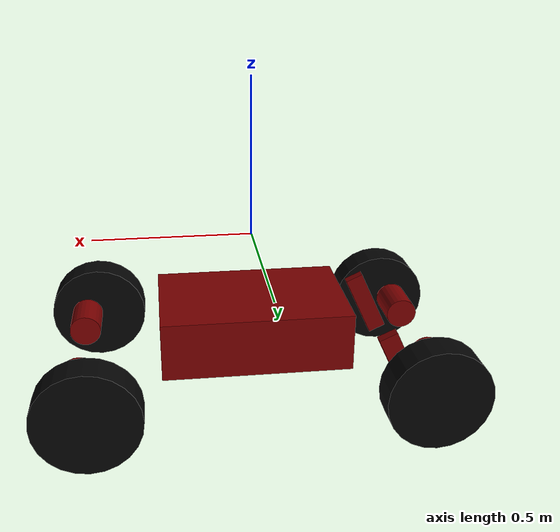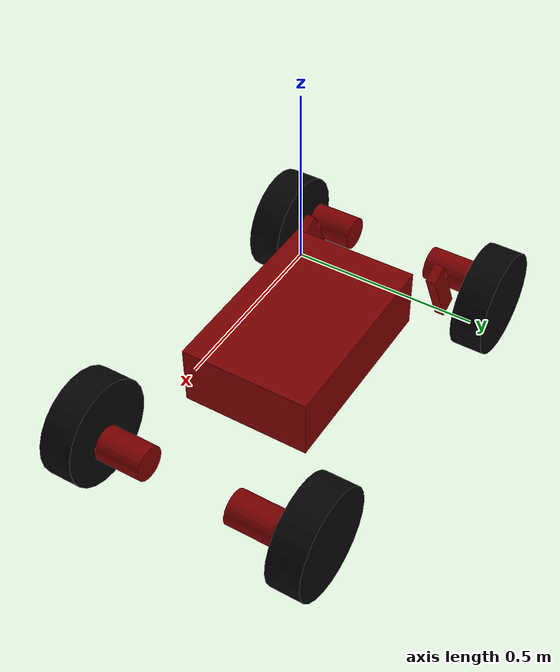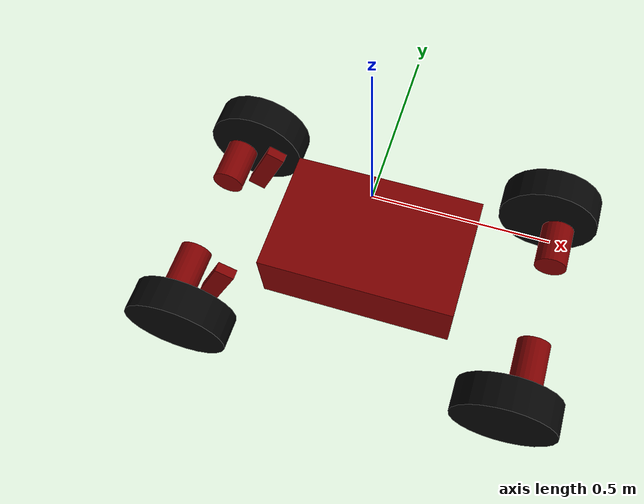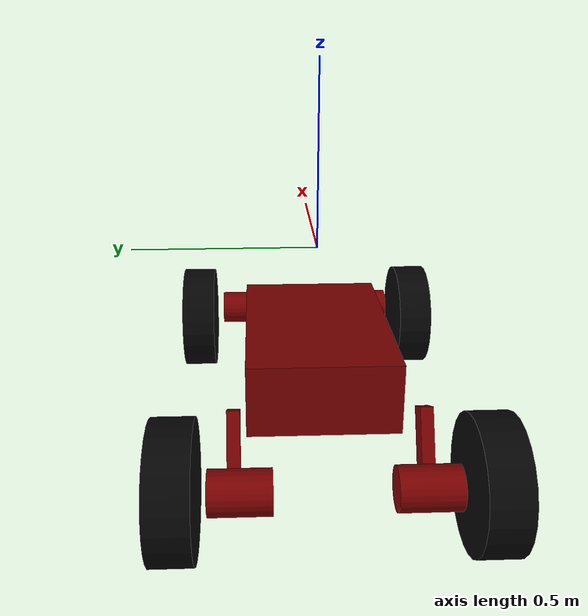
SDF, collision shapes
<?xml version="1.0" ?>
<sdf version='1.9'>
  <model name='gpr_robot' canonical_link='base_link'>
    <static>false</static>

    <!-- Chassis -->
    <link name='base_link'>
      <pose relative_to='__model__'>0 0 0 0 0 0</pose>
      <gravity>true</gravity>
      <self_collide>false</self_collide>
      <enable_wind>false</enable_wind>
      <kinematic>false</kinematic>
      <inertial>
        <mass>46.064</mass>
        <inertia>
          <ixx>0.615397</ixx>
          <ixy>-0.0240585</ixy>
          <ixz>-0.120749</ixz>
          <iyy>1.75388</iyy>
          <iyz>-0.0028322</iyz>
          <izz>2.03641</izz>
        </inertia>
      </inertial>

      <!-- Motors -->
      <collision name='motor_rear_left_collision'>
        <pose>0.56092 0.20875 -0.38671 1.5708 0 0</pose>
        <geometry>
          <cylinder>
            <radius>0.0525</radius>
            <length>0.14465</length>
          </cylinder>
        </geometry>
      </collision>
      <visual name='motor_rear_left_visual'>
        <pose>0.56092 0.20875 -0.38671 1.5708 0 0</pose>
        <geometry>
          <cylinder>
            <radius>0.0525</radius>
            <length>0.14465</length>
          </cylinder>
        </geometry>
        <material>
          <ambient>0.5 0 0 1</ambient>
          <diffuse>0.5 0 0 1</diffuse>
          <specular>0.5 0 0 1</specular>
        </material>
      </visual>
      <collision name='motor_rear_right_collision'>
        <pose>0.56092 -0.20875 -0.38671 1.5708 0 0</pose>
        <geometry>
          <cylinder>
            <radius>0.0525</radius>
            <length>0.14465</length>
          </cylinder>
        </geometry>
      </collision>
      <visual name='motor_rear_right_visual'>
        <pose>0.56092 -0.20875 -0.38671 1.5708 0 0</pose>
        <geometry>
          <cylinder>
            <radius>0.0525</radius>
            <length>0.14465</length>
          </cylinder>
        </geometry>
        <material>
          <ambient>0.5 0 0 1</ambient>
          <diffuse>0.5 0 0 1</diffuse>
          <specular>0.5 0 0 1</specular>
        </material>
      </visual>
      <collision name='motor_back_left_collision'>
        <pose>-0.56092 0.20875 -0.38671 1.5708 0 0</pose>
        <geometry>
          <cylinder>
            <radius>0.0525</radius>
            <length>0.14465</length>
          </cylinder>
        </geometry>
      </collision>
      <visual name='motor_back_left_visual'>
        <pose>-0.56092 0.20875 -0.38671 1.5708 0 0</pose>
        <geometry>
          <cylinder>
            <radius>0.0525</radius>
            <length>0.14465</length>
          </cylinder>
        </geometry>
        <material>
          <ambient>0.5 0 0 1</ambient>
          <diffuse>0.5 0 0 1</diffuse>
          <specular>0.5 0 0 1</specular>
        </material>
      </visual>
      <collision name='motor_back_right_collision'>
        <pose>-0.56092 -0.20875 -0.38671 1.5708 0 0</pose>
        <geometry>
          <cylinder>
            <radius>0.0525</radius>
            <length>0.14465</length>
          </cylinder>
        </geometry>
      </collision>
      <visual name='motor_back_right_visual'>
        <pose>-0.56092 -0.20875 -0.38671 1.5708 0 0</pose>
        <geometry>
          <cylinder>
            <radius>0.0525</radius>
            <length>0.14465</length>
          </cylinder>
        </geometry>
        <material>
          <ambient>0.5 0 0 1</ambient>
          <diffuse>0.5 0 0 1</diffuse>
          <specular>0.5 0 0 1</specular>
        </material>
      </visual>

      <!-- Frame -->
      <collision name='frame_rear_left_collision'>
        <pose>-0.44757 0.22456 -0.37413 0 -1.13446 0</pose>
        <geometry>
          <box>
            <size>0.22860 0.031 0.062</size>
          </box>
        </geometry>
      </collision>
      <visual name='frame_rear_left_visual'>
        <pose>-0.44757 0.22456 -0.37413 0 -1.13446 0</pose>
        <geometry>
          <box>
            <size>0.22860 0.031 0.062</size>
          </box>
        </geometry>
        <material>
          <ambient>0.5 0 0 1</ambient>
          <diffuse>0.5 0 0 1</diffuse>
          <specular>0.5 0 0 1</specular>
        </material>
      </visual>
      <collision name='frame_rear_right_collision'>
        <pose>-0.44757 -0.22456 -0.37413 0 -1.13446 0</pose>
        <geometry>
          <box>
            <size>0.22860 0.031 0.062</size>
          </box>
        </geometry>
      </collision>
      <visual name='frame_rear_right_visual'>
        <pose>-0.44757 -0.22456 -0.37413 0 -1.13446 0</pose>
        <geometry>
          <box>
            <size>0.22860 0.031 0.062</size>
          </box>
        </geometry>
        <material>
          <ambient>0.5 0 0 1</ambient>
          <diffuse>0.5 0 0 1</diffuse>
          <specular>0.5 0 0 1</specular>
        </material>
      </visual>

      <!-- GPR -->
      <collision name='gpr_collision'>
        <pose>0 0 -0.30602 0 0 0</pose>
        <geometry>
          <box>
            <size>0.60600 0.39400 0.18830</size>
          </box>
        </geometry>
      </collision>
      <visual name='gpr__visual'>
        <pose>0 0 -0.30602 0 0 0</pose>
        <geometry>
          <box>
            <size>0.60600 0.39400 0.18830</size>
          </box>
        </geometry>
        <material>
          <ambient>0.5 0 0 1</ambient>
          <diffuse>0.5 0 0 1</diffuse>
          <specular>0.5 0 0 1</specular>
        </material>
      </visual>

      <!-- PV -->

      <!-- GPS -->
      <visual name='gps_visual'>
        <pose>-0.58619 0.19456 0.66055 0 0 0</pose>
        <geometry>
          <cylinder>
            <radius>0.088</radius>
            <length>0.07</length>
          </cylinder>
        </geometry>
        <material>
          <ambient> 0.5 0.0 0.5 1</ambient>
          <diffuse> 0.5 0.0 0.5 1</diffuse>
          <specular>0.5 0.0 0.5 1</specular>
        </material>
      </visual>
      <visual name='gps_pole_visual'>
        <pose>-0.58619 0.19456 0.16102 0 0 0</pose>
        <geometry>
          <cylinder>
            <radius>0.016</radius>
            <length>0.9214</length>
          </cylinder>
        </geometry>
        <material>
          <ambient> 0.5 0.0 0.5 1</ambient>
          <diffuse> 0.5 0.0 0.5 1</diffuse>
          <specular>0.5 0.0 0.5 1</specular>
        </material>
      </visual>

      <!-- Chassis mesh -->
      <visual name='base_link_visual'>
        <pose>0 0 0 1.5708 0 1.5708</pose>
        <geometry>
          <mesh>
            <scale>1 1 1</scale>
            <uri>package://gpr_robot_description/models/gpr_robot/meshes/chassis.stl</uri>
          </mesh>
        </geometry>
        <material>
          <ambient> 0.25 0.25 0.25 1</ambient>
          <diffuse> 0.25 0.25 0.25 1</diffuse>
          <specular>0.25 0.25 0.25 1</specular>
        </material>
      </visual>

      <!-- IMU -->
      <sensor name='imu_sensor' type='imu'>
        <always_on>1</always_on>
        <update_rate>1</update_rate>
        <visualize>true</visualize>
        <topic>imu</topic>
      </sensor>

      <!-- Lidar -->
      <sensor name='os1_32' type='gpu_lidar'>
        <pose>0.62046 0 0.13303 0 0.50562677122 0</pose>
        <topic>lidar</topic>
        <visualize>true</visualize>
        <always_on>true</always_on>
        <update_rate>10</update_rate>
        <lidar>
          <scan>
            <horizontal>
              <samples>1024</samples>
              <resolution>1</resolution>
              <min_angle>-1.396263</min_angle>
              <max_angle>1.396263</max_angle>
            </horizontal>
            <vertical>
              <samples>32</samples>
              <resolution>1</resolution>
              <min_angle>-0.261799</min_angle>
              <max_angle>0.261799</max_angle>
            </vertical>
          </scan>
          <range>
            <min>0.1</min>
            <max>120.0</max>
            <resolution>0.01</resolution>
          </range>
        </lidar>
      </sensor>
      <visual name='lidar_visual'>
        <pose>0.62046 0 0.13303 0 0.50562677122 0</pose>
        <geometry>
          <cylinder>
            <radius>0.05</radius>
            <length>0.1</length>
          </cylinder>
        </geometry>
        <material>
          <ambient> 0.5 0.0 0.5 1</ambient>
          <diffuse> 0.5 0.0 0.5 1</diffuse>
          <specular>0.5 0.0 0.5 1</specular>
        </material>
      </visual>

    </link>

    <!-- Front left Wheel -->
    <link name='front_left_wheel_link'>
      <pose relative_to='base_link'>0.52294 0.35953 -0.40442 1.5708 0 0</pose>
      <gravity>true</gravity>
      <self_collide>false</self_collide>
      <enable_wind>false</enable_wind>
      <kinematic>false</kinematic>
      <inertial>
        <mass>2.637</mass>
        <inertia>
          <ixx>0.02467</ixx>
          <ixy>0</ixy>
          <ixz>0</ixz>
          <iyy>0.04411</iyy>
          <iyz>0</iyz>
          <izz>0.02467</izz>
        </inertia>
      </inertial>
      <collision name='collision'>
        <geometry>
          <cylinder>
            <length>0.10231</length>
            <radius>0.1651</radius>
          </cylinder>
        </geometry>
        <surface>
          <contact>
            <ode>
              <kp>1e+07</kp>
              <kd>1</kd>
            </ode>
          </contact>
          <friction>
            <ode>
              <mu>0.5</mu>
              <mu2>1</mu2>
              <slip1>0.00062</slip1>
              <slip2>0</slip2>
              <fdir1>0 0 1</fdir1>
            </ode>
          </friction>
        </surface>
      </collision>
      <visual name='visual'>
        <geometry>
          <mesh>
            <scale>1 1 1</scale>
            <uri>package://gpr_robot_description/models/gpr_robot/meshes/wheel.stl</uri>
          </mesh>
        </geometry>
        <material>
          <ambient> 0.02 0.02 0.02 1</ambient>
          <diffuse> 0.02 0.02 0.02 1</diffuse>
          <specular>0.02 0.02 0.02 1</specular>
        </material>
      </visual>
    </link>
    <joint name='front_left_wheel_joint' type='revolute'>
      <pose relative_to='front_left_wheel_link' />
      <child>front_left_wheel_link</child>
      <parent>base_link</parent>
      <axis>
        <xyz expressed_in='__model__'>0 1 0</xyz>
        <limit>
          <lower>-1e+16</lower>
          <upper>1e+16</upper>
        </limit>
        <dynamics>
          <spring_reference>0</spring_reference>
          <spring_stiffness>0</spring_stiffness>
        </dynamics>
      </axis>
    </joint>

    <!-- Front right Wheel -->
    <link name='front_right_wheel_link'>
      <pose relative_to='base_link'>0.52294 -0.35953 -0.40442 1.5708 0 0</pose>
      <gravity>true</gravity>
      <self_collide>false</self_collide>
      <enable_wind>false</enable_wind>
      <kinematic>false</kinematic>
      <inertial>
        <mass>2.637</mass>
        <inertia>
          <ixx>0.02467</ixx>
          <ixy>0</ixy>
          <ixz>0</ixz>
          <iyy>0.04411</iyy>
          <iyz>0</iyz>
          <izz>0.02467</izz>
        </inertia>
      </inertial>
      <collision name='collision'>
        <geometry>
          <cylinder>
            <length>0.10231</length>
            <radius>0.1651</radius>
          </cylinder>
        </geometry>
        <surface>
          <contact>
            <ode>
              <kp>1e+07</kp>
              <kd>1</kd>
            </ode>
          </contact>
          <friction>
            <ode>
              <mu>0.5</mu>
              <mu2>1</mu2>
              <slip1>0.00062</slip1>
              <slip2>0</slip2>
              <fdir1>0 0 1</fdir1>
            </ode>
          </friction>
        </surface>
      </collision>
      <visual name='visual'>
        <geometry>
          <mesh>
            <scale>1 1 1</scale>
            <uri>package://gpr_robot_description/models/gpr_robot/meshes/wheel.stl</uri>
          </mesh>
        </geometry>
        <material>
          <ambient> 0.02 0.02 0.02 1</ambient>
          <diffuse> 0.02 0.02 0.02 1</diffuse>
          <specular>0.02 0.02 0.02 1</specular>
        </material>
      </visual>
    </link>
    <joint name='front_right_wheel_joint' type='revolute'>
      <pose relative_to='front_right_wheel_link' />
      <child>front_right_wheel_link</child>
      <parent>base_link</parent>
      <axis>
        <xyz expressed_in='__model__'>0 1 0</xyz>
        <limit>
          <lower>-1e+16</lower>
          <upper>1e+16</upper>
        </limit>
        <dynamics>
          <spring_reference>0</spring_reference>
          <spring_stiffness>0</spring_stiffness>
        </dynamics>
      </axis>
    </joint>

    <!-- Rear left Wheel -->
    <link name='rear_left_wheel_link'>
      <pose relative_to='base_link'>-0.52294 0.35953 -0.40442 1.5708 0 0</pose>
      <gravity>true</gravity>
      <self_collide>false</self_collide>
      <enable_wind>false</enable_wind>
      <kinematic>false</kinematic>
      <inertial>
        <mass>2.637</mass>
        <inertia>
          <ixx>0.02467</ixx>
          <ixy>0</ixy>
          <ixz>0</ixz>
          <iyy>0.04411</iyy>
          <iyz>0</iyz>
          <izz>0.02467</izz>
        </inertia>
      </inertial>
      <collision name='collision'>
        <geometry>
          <cylinder>
            <length>0.10231</length>
            <radius>0.1651</radius>
          </cylinder>
        </geometry>
        <surface>
          <contact>
            <ode>
              <kp>1e+07</kp>
              <kd>1</kd>
            </ode>
          </contact>
          <friction>
            <ode>
              <mu>0.5</mu>
              <mu2>1</mu2>
              <slip1>0.00062</slip1>
              <slip2>0</slip2>
              <fdir1>0 0 1</fdir1>
            </ode>
          </friction>
        </surface>
      </collision>
      <visual name='visual'>
        <geometry>
          <mesh>
            <scale>1 1 1</scale>
            <uri>package://gpr_robot_description/models/gpr_robot/meshes/wheel.stl</uri>
          </mesh>
        </geometry>
        <material>
          <ambient> 0.02 0.02 0.02 1</ambient>
          <diffuse> 0.02 0.02 0.02 1</diffuse>
          <specular>0.02 0.02 0.02 1</specular>
        </material>
      </visual>
    </link>
    <joint name='rear_left_wheel_joint' type='revolute'>
      <pose relative_to='rear_left_wheel_link' />
      <child>rear_left_wheel_link</child>
      <parent>base_link</parent>
      <axis>
        <xyz expressed_in='__model__'>0 1 0</xyz>
        <limit>
          <lower>-1e+16</lower>
          <upper>1e+16</upper>
        </limit>
        <dynamics>
          <spring_reference>0</spring_reference>
          <spring_stiffness>0</spring_stiffness>
        </dynamics>
      </axis>
    </joint>

    <!-- Rear right Wheel -->
    <link name='rear_right_wheel_link'>
      <pose relative_to='base_link'>-0.52294 -0.35953 -0.40442 1.5708 0 0</pose>
      <gravity>true</gravity>
      <self_collide>false</self_collide>
      <enable_wind>false</enable_wind>
      <kinematic>false</kinematic>
      <inertial>
        <mass>2.637</mass>
        <inertia>
          <ixx>0.02467</ixx>
          <ixy>0</ixy>
          <ixz>0</ixz>
          <iyy>0.04411</iyy>
          <iyz>0</iyz>
          <izz>0.02467</izz>
        </inertia>
      </inertial>
      <collision name='collision'>
        <geometry>
          <cylinder>
            <length>0.10231</length>
            <radius>0.1651</radius>
          </cylinder>
        </geometry>
        <surface>
          <contact>
            <ode>
              <kp>1e+07</kp>
              <kd>1</kd>
            </ode>
          </contact>
          <friction>
            <ode>
              <mu>0.5</mu>
              <mu2>1</mu2>
              <slip1>0.00062</slip1>
              <slip2>0</slip2>
              <fdir1>0 0 1</fdir1>
            </ode>
          </friction>
        </surface>
      </collision>
      <visual name='visual'>
        <geometry>
          <mesh>
            <scale>1 1 1</scale>
            <uri>package://gpr_robot_description/models/gpr_robot/meshes/wheel.stl</uri>
          </mesh>
        </geometry>
        <material>
          <ambient> 0.02 0.02 0.02 1</ambient>
          <diffuse> 0.02 0.02 0.02 1</diffuse>
          <specular>0.02 0.02 0.02 1</specular>
        </material>
      </visual>
    </link>
    <joint name='rear_right_wheel_joint' type='revolute'>
      <pose relative_to='rear_right_wheel_link' />
      <child>rear_right_wheel_link</child>
      <parent>base_link</parent>
      <axis>
        <xyz expressed_in='__model__'>0 1 0</xyz>
        <limit>
          <lower>-1e+16</lower>
          <upper>1e+16</upper>
        </limit>
        <dynamics>
          <spring_reference>0</spring_reference>
          <spring_stiffness>0</spring_stiffness>
        </dynamics>
      </axis>
    </joint>

    <!-- TF Publisher -->
    <plugin filename='gz-sim-pose-publisher-system'
      name='gz::sim::systems::PosePublisher'>
      <publish_link_pose>true</publish_link_pose>
      <publish_collision_pose>false</publish_collision_pose>
      <publish_visual_pose>false</publish_visual_pose>
      <publish_nested_model_pose>false</publish_nested_model_pose>
      <update_frequency>20</update_frequency>
    </plugin>
    <!-- Diff_drive plugin -->
    <plugin filename='gz-sim-diff-drive-system'
      name='gz::sim::systems::DiffDrive'>
      <left_joint>rear_left_wheel_joint</left_joint>
      <left_joint>front_left_wheel_joint</left_joint>
      <right_joint>rear_right_wheel_joint</right_joint>
      <right_joint>front_right_wheel_joint</right_joint>
      <wheel_separation>0.71882</wheel_separation>
      <wheel_radius>0.1651</wheel_radius>
      <odom_publish_frequency>1</odom_publish_frequency>
      <frame_id>odom</frame_id>
      <child_frame_id>base_link</child_frame_id>
      <topic>cmd_vel</topic>
    </plugin>

  </model>
</sdf>
